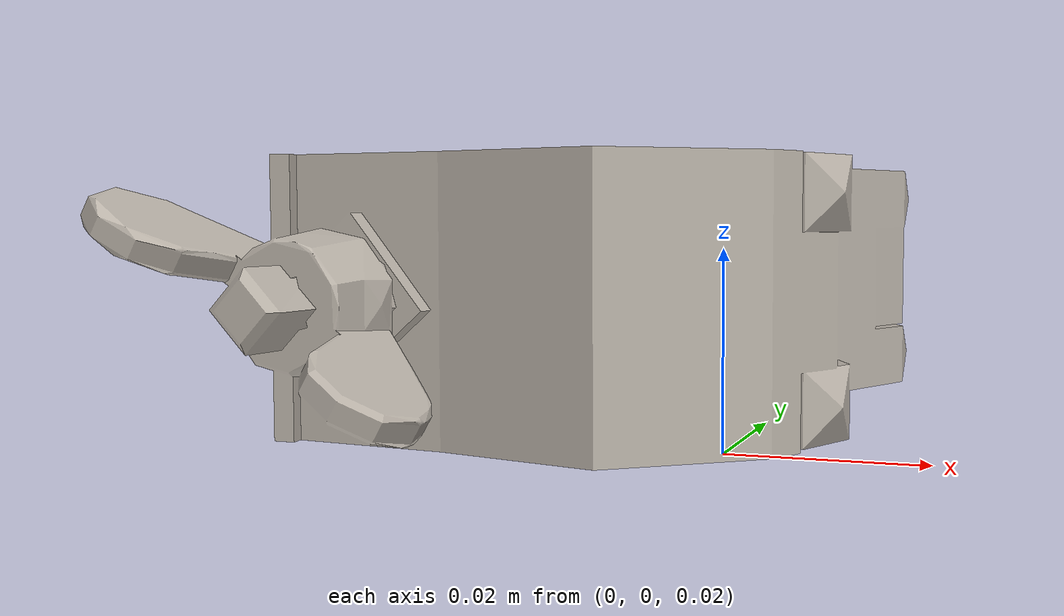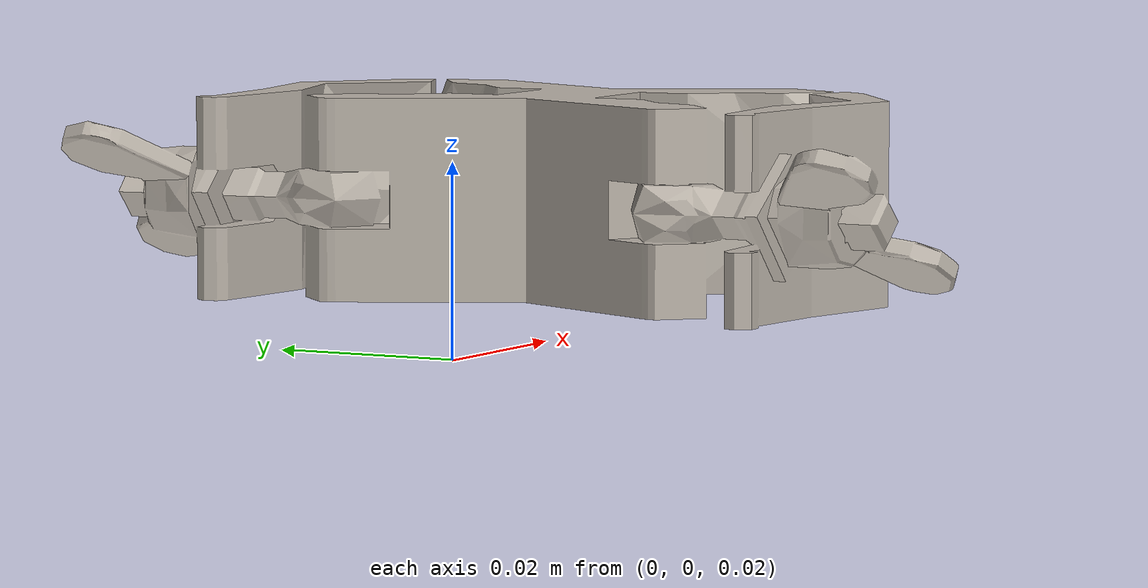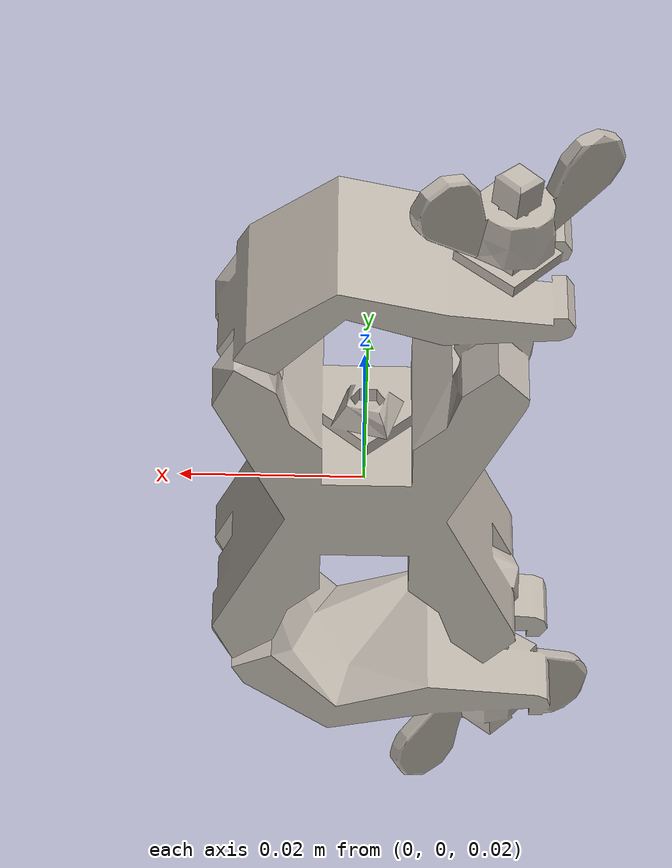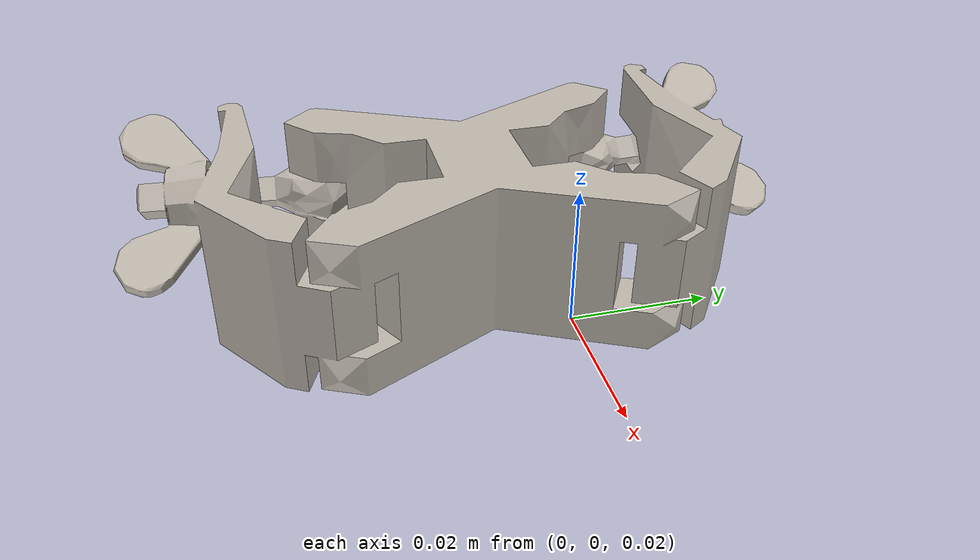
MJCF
<mujoco model="steel_pipe_fasteners_no_supports">
  <asset>
    <texture type="2d" name="aluminum_alloy_tex" file="aluminum_alloy.png"/>
    <material name="aluminum_alloy_mat" texture="aluminum_alloy_tex" texuniform="true" specular="0.8" shininess="0.6" rgba="1 1 1 1"/>
    <mesh name="model" file="steel_pipe_fasteners_no_supports.stl" scale="0.0006667 0.0006667 0.0006667"/>
  </asset>
  <worldbody>
    <body name="model">
      <geom name="visual" type="mesh" mesh="model" material="aluminum_alloy_mat" contype="0" conaffinity="0" group="2"/>
      <geom name="collision" type="mesh" mesh="model" group="3"/>
    </body>
  </worldbody>
</mujoco>
